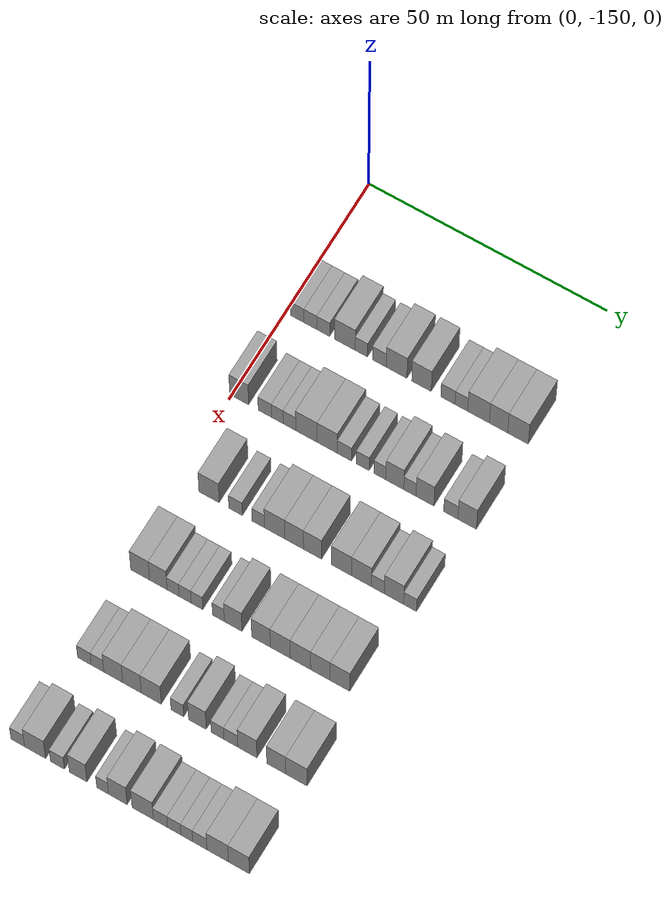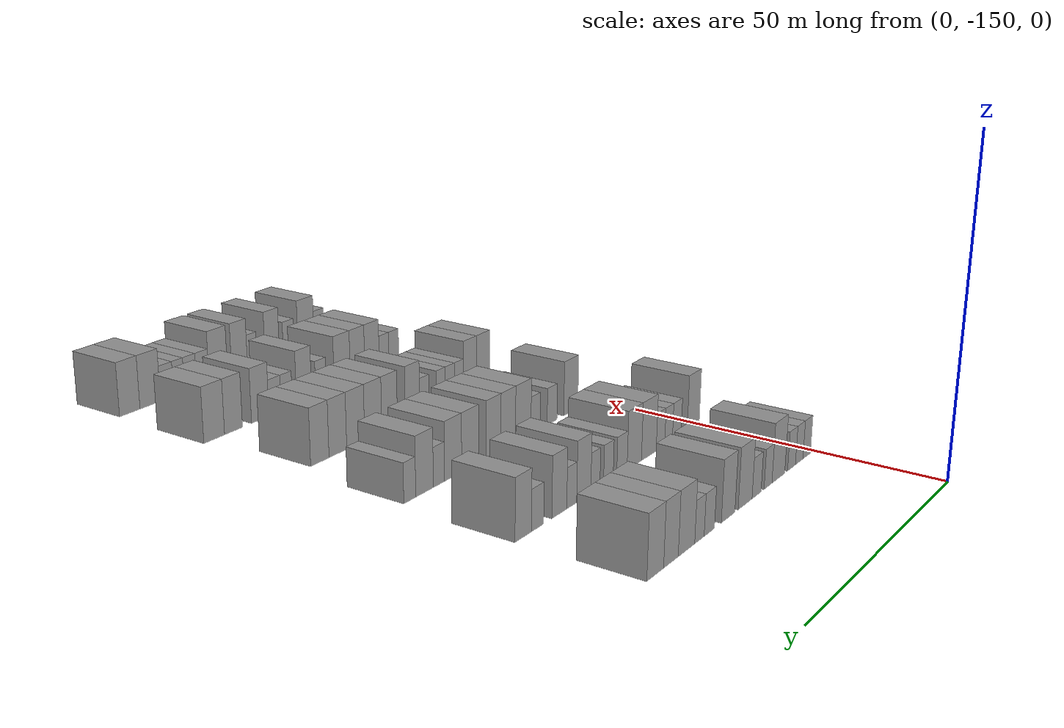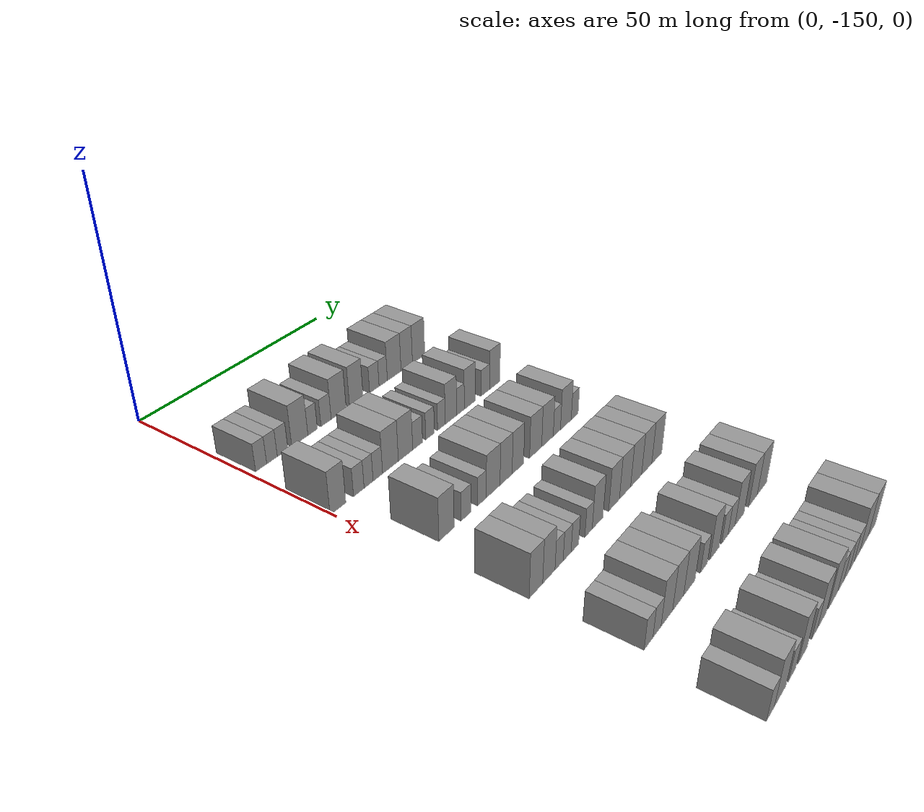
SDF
<sdf version="1.6">
 <world name="default">
  <model name="building_50">
   <static>1</static>
   <pose>25.0000 -147.4396 0 0.000000 0.000000 0.000000</pose>
   <link name="link">
    <pose>0 0 3.00 0 0 0</pose>
    <collision name="collision"><geometry><box><size>10.0000 2.7616 6.0000</size></box></geometry></collision>
    <visual name="visual">
     <cast_shadows>0</cast_shadows>
     <geometry><box><size>10.0000 2.7616 6.0000</size></box></geometry>
     <material>
      <script>
       <uri>model://grey_wall/materials/scripts</uri>
       <uri>model://grey_wall/materials/textures</uri>
       <name>vrc/grey_wall</name>
      </script>
     </material>
    </visual>
   </link>
  </model>
  <model name="building_51">
   <static>1</static>
   <pose>25.0000 -144.7101 0 0.000000 0.000000 0.000000</pose>
   <link name="link">
    <pose>0 0 3.00 0 0 0</pose>
    <collision name="collision"><geometry><box><size>10.0000 2.6974 6.0000</size></box></geometry></collision>
    <visual name="visual">
     <cast_shadows>0</cast_shadows>
     <geometry><box><size>10.0000 2.6974 6.0000</size></box></geometry>
     <material>
      <script>
       <uri>model://grey_wall/materials/scripts</uri>
       <uri>model://grey_wall/materials/textures</uri>
       <name>vrc/grey_wall</name>
      </script>
     </material>
    </visual>
   </link>
  </model>
  <model name="building_52">
   <static>1</static>
   <pose>25.0000 -141.9887 0 0.000000 0.000000 0.000000</pose>
   <link name="link">
    <pose>0 0 3.00 0 0 0</pose>
    <collision name="collision"><geometry><box><size>10.0000 2.7454 6.0000</size></box></geometry></collision>
    <visual name="visual">
     <cast_shadows>0</cast_shadows>
     <geometry><box><size>10.0000 2.7454 6.0000</size></box></geometry>
     <material>
      <script>
       <uri>model://grey_wall/materials/scripts</uri>
       <uri>model://grey_wall/materials/textures</uri>
       <name>vrc/grey_wall</name>
      </script>
     </material>
    </visual>
   </link>
  </model>
  <model name="building_53">
   <static>1</static>
   <pose>25.0000 -137.4434 0 0.000000 0.000000 0.000000</pose>
   <link name="link">
    <pose>0 0 4.50 0 0 0</pose>
    <collision name="collision"><geometry><box><size>10.0000 4.3451 9.0000</size></box></geometry></collision>
    <visual name="visual">
     <cast_shadows>0</cast_shadows>
     <geometry><box><size>10.0000 4.3451 9.0000</size></box></geometry>
     <material>
      <script>
       <uri>model://grey_wall/materials/scripts</uri>
       <uri>model://grey_wall/materials/textures</uri>
       <name>vrc/grey_wall</name>
      </script>
     </material>
    </visual>
   </link>
  </model>
  <model name="building_54">
   <static>1</static>
   <pose>25.0000 -133.9712 0 0.000000 0.000000 0.000000</pose>
   <link name="link">
    <pose>0 0 3.00 0 0 0</pose>
    <collision name="collision"><geometry><box><size>10.0000 2.5995 6.0000</size></box></geometry></collision>
    <visual name="visual">
     <cast_shadows>0</cast_shadows>
     <geometry><box><size>10.0000 2.5995 6.0000</size></box></geometry>
     <material>
      <script>
       <uri>model://grey_wall/materials/scripts</uri>
       <uri>model://grey_wall/materials/textures</uri>
       <name>vrc/grey_wall</name>
      </script>
     </material>
    </visual>
   </link>
  </model>
  <model name="building_55">
   <static>1</static>
   <pose>25.0000 -130.2247 0 0.000000 0.000000 0.000000</pose>
   <link name="link">
    <pose>0 0 3.00 0 0 0</pose>
    <collision name="collision"><geometry><box><size>10.0000 2.8934 6.0000</size></box></geometry></collision>
    <visual name="visual">
     <cast_shadows>0</cast_shadows>
     <geometry><box><size>10.0000 2.8934 6.0000</size></box></geometry>
     <material>
      <script>
       <uri>model://grey_wall/materials/scripts</uri>
       <uri>model://grey_wall/materials/textures</uri>
       <name>vrc/grey_wall</name>
      </script>
     </material>
    </visual>
   </link>
  </model>
  <model name="building_56">
   <static>1</static>
   <pose>25.0000 -126.6018 0 0.000000 0.000000 0.000000</pose>
   <link name="link">
    <pose>0 0 4.50 0 0 0</pose>
    <collision name="collision"><geometry><box><size>10.0000 4.3524 9.0000</size></box></geometry></collision>
    <visual name="visual">
     <cast_shadows>0</cast_shadows>
     <geometry><box><size>10.0000 4.3524 9.0000</size></box></geometry>
     <material>
      <script>
       <uri>model://grey_wall/materials/scripts</uri>
       <uri>model://grey_wall/materials/textures</uri>
       <name>vrc/grey_wall</name>
      </script>
     </material>
    </visual>
   </link>
  </model>
  <model name="building_57">
   <static>1</static>
   <pose>25.0000 -121.3888 0 0.000000 0.000000 0.000000</pose>
   <link name="link">
    <pose>0 0 4.50 0 0 0</pose>
    <collision name="collision"><geometry><box><size>10.0000 4.0735 9.0000</size></box></geometry></collision>
    <visual name="visual">
     <cast_shadows>0</cast_shadows>
     <geometry><box><size>10.0000 4.0735 9.0000</size></box></geometry>
     <material>
      <script>
       <uri>model://grey_wall/materials/scripts</uri>
       <uri>model://grey_wall/materials/textures</uri>
       <name>vrc/grey_wall</name>
      </script>
     </material>
    </visual>
   </link>
  </model>
  <model name="building_58">
   <static>1</static>
   <pose>25.0000 -115.8727 0 0.000000 0.000000 0.000000</pose>
   <link name="link">
    <pose>0 0 3.00 0 0 0</pose>
    <collision name="collision"><geometry><box><size>10.0000 2.9587 6.0000</size></box></geometry></collision>
    <visual name="visual">
     <cast_shadows>0</cast_shadows>
     <geometry><box><size>10.0000 2.9587 6.0000</size></box></geometry>
     <material>
      <script>
       <uri>model://grey_wall/materials/scripts</uri>
       <uri>model://grey_wall/materials/textures</uri>
       <name>vrc/grey_wall</name>
      </script>
     </material>
    </visual>
   </link>
  </model>
  <model name="building_59">
   <static>1</static>
   <pose>25.0000 -113.0709 0 0.000000 0.000000 0.000000</pose>
   <link name="link">
    <pose>0 0 3.00 0 0 0</pose>
    <collision name="collision"><geometry><box><size>10.0000 2.6449 6.0000</size></box></geometry></collision>
    <visual name="visual">
     <cast_shadows>0</cast_shadows>
     <geometry><box><size>10.0000 2.6449 6.0000</size></box></geometry>
     <material>
      <script>
       <uri>model://grey_wall/materials/scripts</uri>
       <uri>model://grey_wall/materials/textures</uri>
       <name>vrc/grey_wall</name>
      </script>
     </material>
    </visual>
   </link>
  </model>
  <model name="building_60">
   <static>1</static>
   <pose>25.0000 -109.5087 0 0.000000 0.000000 0.000000</pose>
   <link name="link">
    <pose>0 0 4.50 0 0 0</pose>
    <collision name="collision"><geometry><box><size>10.0000 4.4795 9.0000</size></box></geometry></collision>
    <visual name="visual">
     <cast_shadows>0</cast_shadows>
     <geometry><box><size>10.0000 4.4795 9.0000</size></box></geometry>
     <material>
      <script>
       <uri>model://grey_wall/materials/scripts</uri>
       <uri>model://grey_wall/materials/textures</uri>
       <name>vrc/grey_wall</name>
      </script>
     </material>
    </visual>
   </link>
  </model>
  <model name="building_61">
   <static>1</static>
   <pose>25.0000 -105.3540 0 0.000000 0.000000 0.000000</pose>
   <link name="link">
    <pose>0 0 4.50 0 0 0</pose>
    <collision name="collision"><geometry><box><size>10.0000 3.8300 9.0000</size></box></geometry></collision>
    <visual name="visual">
     <cast_shadows>0</cast_shadows>
     <geometry><box><size>10.0000 3.8300 9.0000</size></box></geometry>
     <material>
      <script>
       <uri>model://grey_wall/materials/scripts</uri>
       <uri>model://grey_wall/materials/textures</uri>
       <name>vrc/grey_wall</name>
      </script>
     </material>
    </visual>
   </link>
  </model>
  <model name="building_62">
   <static>1</static>
   <pose>25.0000 -101.3069 0 0.000000 0.000000 0.000000</pose>
   <link name="link">
    <pose>0 0 4.50 0 0 0</pose>
    <collision name="collision"><geometry><box><size>10.0000 4.2642 9.0000</size></box></geometry></collision>
    <visual name="visual">
     <cast_shadows>0</cast_shadows>
     <geometry><box><size>10.0000 4.2642 9.0000</size></box></geometry>
     <material>
      <script>
       <uri>model://grey_wall/materials/scripts</uri>
       <uri>model://grey_wall/materials/textures</uri>
       <name>vrc/grey_wall</name>
      </script>
     </material>
    </visual>
   </link>
  </model>
  <model name="building_216">
   <static>1</static>
   <pose>44.0000 -148.3406 0 0.000000 0.000000 0.000000</pose>
   <link name="link">
    <pose>0 0 4.50 0 0 0</pose>
    <collision name="collision"><geometry><box><size>10.0000 3.9997 9.0000</size></box></geometry></collision>
    <visual name="visual">
     <cast_shadows>0</cast_shadows>
     <geometry><box><size>10.0000 3.9997 9.0000</size></box></geometry>
     <material>
      <script>
       <uri>model://grey_wall/materials/scripts</uri>
       <uri>model://grey_wall/materials/textures</uri>
       <name>vrc/grey_wall</name>
      </script>
     </material>
    </visual>
   </link>
  </model>
  <model name="building_217">
   <static>1</static>
   <pose>44.0000 -142.9400 0 0.000000 0.000000 0.000000</pose>
   <link name="link">
    <pose>0 0 3.00 0 0 0</pose>
    <collision name="collision"><geometry><box><size>10.0000 2.8016 6.0000</size></box></geometry></collision>
    <visual name="visual">
     <cast_shadows>0</cast_shadows>
     <geometry><box><size>10.0000 2.8016 6.0000</size></box></geometry>
     <material>
      <script>
       <uri>model://grey_wall/materials/scripts</uri>
       <uri>model://grey_wall/materials/textures</uri>
       <name>vrc/grey_wall</name>
      </script>
     </material>
    </visual>
   </link>
  </model>
  <model name="building_218">
   <static>1</static>
   <pose>44.0000 -140.3200 0 0.000000 0.000000 0.000000</pose>
   <link name="link">
    <pose>0 0 3.00 0 0 0</pose>
    <collision name="collision"><geometry><box><size>10.0000 2.4385 6.0000</size></box></geometry></collision>
    <visual name="visual">
     <cast_shadows>0</cast_shadows>
     <geometry><box><size>10.0000 2.4385 6.0000</size></box></geometry>
     <material>
      <script>
       <uri>model://grey_wall/materials/scripts</uri>
       <uri>model://grey_wall/materials/textures</uri>
       <name>vrc/grey_wall</name>
      </script>
     </material>
    </visual>
   </link>
  </model>
  <model name="building_219">
   <static>1</static>
   <pose>44.0000 -137.7869 0 0.000000 0.000000 0.000000</pose>
   <link name="link">
    <pose>0 0 3.00 0 0 0</pose>
    <collision name="collision"><geometry><box><size>10.0000 2.6277 6.0000</size></box></geometry></collision>
    <visual name="visual">
     <cast_shadows>0</cast_shadows>
     <geometry><box><size>10.0000 2.6277 6.0000</size></box></geometry>
     <material>
      <script>
       <uri>model://grey_wall/materials/scripts</uri>
       <uri>model://grey_wall/materials/textures</uri>
       <name>vrc/grey_wall</name>
      </script>
     </material>
    </visual>
   </link>
  </model>
  <model name="building_220">
   <static>1</static>
   <pose>44.0000 -134.2328 0 0.000000 0.000000 0.000000</pose>
   <link name="link">
    <pose>0 0 4.50 0 0 0</pose>
    <collision name="collision"><geometry><box><size>10.0000 4.4805 9.0000</size></box></geometry></collision>
    <visual name="visual">
     <cast_shadows>0</cast_shadows>
     <geometry><box><size>10.0000 4.4805 9.0000</size></box></geometry>
     <material>
      <script>
       <uri>model://grey_wall/materials/scripts</uri>
       <uri>model://grey_wall/materials/textures</uri>
       <name>vrc/grey_wall</name>
      </script>
     </material>
    </visual>
   </link>
  </model>
  <model name="building_221">
   <static>1</static>
   <pose>44.0000 -129.8819 0 0.000000 0.000000 0.000000</pose>
   <link name="link">
    <pose>0 0 4.50 0 0 0</pose>
    <collision name="collision"><geometry><box><size>10.0000 4.2213 9.0000</size></box></geometry></collision>
    <visual name="visual">
     <cast_shadows>0</cast_shadows>
     <geometry><box><size>10.0000 4.2213 9.0000</size></box></geometry>
     <material>
      <script>
       <uri>model://grey_wall/materials/scripts</uri>
       <uri>model://grey_wall/materials/textures</uri>
       <name>vrc/grey_wall</name>
      </script>
     </material>
    </visual>
   </link>
  </model>
  <model name="building_222">
   <static>1</static>
   <pose>44.0000 -126.2952 0 0.000000 0.000000 0.000000</pose>
   <link name="link">
    <pose>0 0 3.00 0 0 0</pose>
    <collision name="collision"><geometry><box><size>10.0000 2.9522 6.0000</size></box></geometry></collision>
    <visual name="visual">
     <cast_shadows>0</cast_shadows>
     <geometry><box><size>10.0000 2.9522 6.0000</size></box></geometry>
     <material>
      <script>
       <uri>model://grey_wall/materials/scripts</uri>
       <uri>model://grey_wall/materials/textures</uri>
       <name>vrc/grey_wall</name>
      </script>
     </material>
    </visual>
   </link>
  </model>
  <model name="building_223">
   <static>1</static>
   <pose>44.0000 -122.4851 0 0.000000 0.000000 0.000000</pose>
   <link name="link">
    <pose>0 0 3.00 0 0 0</pose>
    <collision name="collision"><geometry><box><size>10.0000 2.6678 6.0000</size></box></geometry></collision>
    <visual name="visual">
     <cast_shadows>0</cast_shadows>
     <geometry><box><size>10.0000 2.6678 6.0000</size></box></geometry>
     <material>
      <script>
       <uri>model://grey_wall/materials/scripts</uri>
       <uri>model://grey_wall/materials/textures</uri>
       <name>vrc/grey_wall</name>
      </script>
     </material>
    </visual>
   </link>
  </model>
  <model name="building_224">
   <static>1</static>
   <pose>44.0000 -118.9245 0 0.000000 0.000000 0.000000</pose>
   <link name="link">
    <pose>0 0 3.00 0 0 0</pose>
    <collision name="collision"><geometry><box><size>10.0000 2.4534 6.0000</size></box></geometry></collision>
    <visual name="visual">
     <cast_shadows>0</cast_shadows>
     <geometry><box><size>10.0000 2.4534 6.0000</size></box></geometry>
     <material>
      <script>
       <uri>model://grey_wall/materials/scripts</uri>
       <uri>model://grey_wall/materials/textures</uri>
       <name>vrc/grey_wall</name>
      </script>
     </material>
    </visual>
   </link>
  </model>
  <model name="building_225">
   <static>1</static>
   <pose>44.0000 -115.8391 0 0.000000 0.000000 0.000000</pose>
   <link name="link">
    <pose>0 0 4.50 0 0 0</pose>
    <collision name="collision"><geometry><box><size>10.0000 3.7175 9.0000</size></box></geometry></collision>
    <visual name="visual">
     <cast_shadows>0</cast_shadows>
     <geometry><box><size>10.0000 3.7175 9.0000</size></box></geometry>
     <material>
      <script>
       <uri>model://grey_wall/materials/scripts</uri>
       <uri>model://grey_wall/materials/textures</uri>
       <name>vrc/grey_wall</name>
      </script>
     </material>
    </visual>
   </link>
  </model>
  <model name="building_226">
   <static>1</static>
   <pose>44.0000 -112.7089 0 0.000000 0.000000 0.000000</pose>
   <link name="link">
    <pose>0 0 3.00 0 0 0</pose>
    <collision name="collision"><geometry><box><size>10.0000 2.5429 6.0000</size></box></geometry></collision>
    <visual name="visual">
     <cast_shadows>0</cast_shadows>
     <geometry><box><size>10.0000 2.5429 6.0000</size></box></geometry>
     <material>
      <script>
       <uri>model://grey_wall/materials/scripts</uri>
       <uri>model://grey_wall/materials/textures</uri>
       <name>vrc/grey_wall</name>
      </script>
     </material>
    </visual>
   </link>
  </model>
  <model name="building_227">
   <static>1</static>
   <pose>44.0000 -109.5735 0 0.000000 0.000000 0.000000</pose>
   <link name="link">
    <pose>0 0 4.50 0 0 0</pose>
    <collision name="collision"><geometry><box><size>10.0000 3.7279 9.0000</size></box></geometry></collision>
    <visual name="visual">
     <cast_shadows>0</cast_shadows>
     <geometry><box><size>10.0000 3.7279 9.0000</size></box></geometry>
     <material>
      <script>
       <uri>model://grey_wall/materials/scripts</uri>
       <uri>model://grey_wall/materials/textures</uri>
       <name>vrc/grey_wall</name>
      </script>
     </material>
    </visual>
   </link>
  </model>
  <model name="building_228">
   <static>1</static>
   <pose>44.0000 -104.2325 0 0.000000 0.000000 0.000000</pose>
   <link name="link">
    <pose>0 0 3.00 0 0 0</pose>
    <collision name="collision"><geometry><box><size>10.0000 2.9539 6.0000</size></box></geometry></collision>
    <visual name="visual">
     <cast_shadows>0</cast_shadows>
     <geometry><box><size>10.0000 2.9539 6.0000</size></box></geometry>
     <material>
      <script>
       <uri>model://grey_wall/materials/scripts</uri>
       <uri>model://grey_wall/materials/textures</uri>
       <name>vrc/grey_wall</name>
      </script>
     </material>
    </visual>
   </link>
  </model>
  <model name="building_229">
   <static>1</static>
   <pose>44.0000 -100.8487 0 0.000000 0.000000 0.000000</pose>
   <link name="link">
    <pose>0 0 4.50 0 0 0</pose>
    <collision name="collision"><geometry><box><size>10.0000 3.8137 9.0000</size></box></geometry></collision>
    <visual name="visual">
     <cast_shadows>0</cast_shadows>
     <geometry><box><size>10.0000 3.8137 9.0000</size></box></geometry>
     <material>
      <script>
       <uri>model://grey_wall/materials/scripts</uri>
       <uri>model://grey_wall/materials/textures</uri>
       <name>vrc/grey_wall</name>
      </script>
     </material>
    </visual>
   </link>
  </model>
  <model name="building_396">
   <static>1</static>
   <pose>63.0000 -143.1976 0 0.000000 0.000000 0.000000</pose>
   <link name="link">
    <pose>0 0 4.50 0 0 0</pose>
    <collision name="collision"><geometry><box><size>10.0000 4.2313 9.0000</size></box></geometry></collision>
    <visual name="visual">
     <cast_shadows>0</cast_shadows>
     <geometry><box><size>10.0000 4.2313 9.0000</size></box></geometry>
     <material>
      <script>
       <uri>model://grey_wall/materials/scripts</uri>
       <uri>model://grey_wall/materials/textures</uri>
       <name>vrc/grey_wall</name>
      </script>
     </material>
    </visual>
   </link>
  </model>
  <model name="building_397">
   <static>1</static>
   <pose>63.0000 -137.6593 0 0.000000 0.000000 0.000000</pose>
   <link name="link">
    <pose>0 0 3.00 0 0 0</pose>
    <collision name="collision"><geometry><box><size>10.0000 2.8453 6.0000</size></box></geometry></collision>
    <visual name="visual">
     <cast_shadows>0</cast_shadows>
     <geometry><box><size>10.0000 2.8453 6.0000</size></box></geometry>
     <material>
      <script>
       <uri>model://grey_wall/materials/scripts</uri>
       <uri>model://grey_wall/materials/textures</uri>
       <name>vrc/grey_wall</name>
      </script>
     </material>
    </visual>
   </link>
  </model>
  <model name="building_398">
   <static>1</static>
   <pose>63.0000 -132.9473 0 0.000000 0.000000 0.000000</pose>
   <link name="link">
    <pose>0 0 3.00 0 0 0</pose>
    <collision name="collision"><geometry><box><size>10.0000 2.5787 6.0000</size></box></geometry></collision>
    <visual name="visual">
     <cast_shadows>0</cast_shadows>
     <geometry><box><size>10.0000 2.5787 6.0000</size></box></geometry>
     <material>
      <script>
       <uri>model://grey_wall/materials/scripts</uri>
       <uri>model://grey_wall/materials/textures</uri>
       <name>vrc/grey_wall</name>
      </script>
     </material>
    </visual>
   </link>
  </model>
  <model name="building_399">
   <static>1</static>
   <pose>63.0000 -129.5446 0 0.000000 0.000000 0.000000</pose>
   <link name="link">
    <pose>0 0 4.50 0 0 0</pose>
    <collision name="collision"><geometry><box><size>10.0000 4.2268 9.0000</size></box></geometry></collision>
    <visual name="visual">
     <cast_shadows>0</cast_shadows>
     <geometry><box><size>10.0000 4.2268 9.0000</size></box></geometry>
     <material>
      <script>
       <uri>model://grey_wall/materials/scripts</uri>
       <uri>model://grey_wall/materials/textures</uri>
       <name>vrc/grey_wall</name>
      </script>
     </material>
    </visual>
   </link>
  </model>
  <model name="building_400">
   <static>1</static>
   <pose>63.0000 -125.4927 0 0.000000 0.000000 0.000000</pose>
   <link name="link">
    <pose>0 0 4.50 0 0 0</pose>
    <collision name="collision"><geometry><box><size>10.0000 3.8770 9.0000</size></box></geometry></collision>
    <visual name="visual">
     <cast_shadows>0</cast_shadows>
     <geometry><box><size>10.0000 3.8770 9.0000</size></box></geometry>
     <material>
      <script>
       <uri>model://grey_wall/materials/scripts</uri>
       <uri>model://grey_wall/materials/textures</uri>
       <name>vrc/grey_wall</name>
      </script>
     </material>
    </visual>
   </link>
  </model>
  <model name="building_401">
   <static>1</static>
   <pose>63.0000 -121.6686 0 0.000000 0.000000 0.000000</pose>
   <link name="link">
    <pose>0 0 4.50 0 0 0</pose>
    <collision name="collision"><geometry><box><size>10.0000 3.7712 9.0000</size></box></geometry></collision>
    <visual name="visual">
     <cast_shadows>0</cast_shadows>
     <geometry><box><size>10.0000 3.7712 9.0000</size></box></geometry>
     <material>
      <script>
       <uri>model://grey_wall/materials/scripts</uri>
       <uri>model://grey_wall/materials/textures</uri>
       <name>vrc/grey_wall</name>
      </script>
     </material>
    </visual>
   </link>
  </model>
  <model name="building_402">
   <static>1</static>
   <pose>63.0000 -115.6997 0 0.000000 0.000000 0.000000</pose>
   <link name="link">
    <pose>0 0 4.50 0 0 0</pose>
    <collision name="collision"><geometry><box><size>10.0000 4.1666 9.0000</size></box></geometry></collision>
    <visual name="visual">
     <cast_shadows>0</cast_shadows>
     <geometry><box><size>10.0000 4.1666 9.0000</size></box></geometry>
     <material>
      <script>
       <uri>model://grey_wall/materials/scripts</uri>
       <uri>model://grey_wall/materials/textures</uri>
       <name>vrc/grey_wall</name>
      </script>
     </material>
    </visual>
   </link>
  </model>
  <model name="building_403">
   <static>1</static>
   <pose>63.0000 -111.5538 0 0.000000 0.000000 0.000000</pose>
   <link name="link">
    <pose>0 0 4.50 0 0 0</pose>
    <collision name="collision"><geometry><box><size>10.0000 4.1251 9.0000</size></box></geometry></collision>
    <visual name="visual">
     <cast_shadows>0</cast_shadows>
     <geometry><box><size>10.0000 4.1251 9.0000</size></box></geometry>
     <material>
      <script>
       <uri>model://grey_wall/materials/scripts</uri>
       <uri>model://grey_wall/materials/textures</uri>
       <name>vrc/grey_wall</name>
      </script>
     </material>
    </visual>
   </link>
  </model>
  <model name="building_404">
   <static>1</static>
   <pose>63.0000 -108.1817 0 0.000000 0.000000 0.000000</pose>
   <link name="link">
    <pose>0 0 3.00 0 0 0</pose>
    <collision name="collision"><geometry><box><size>10.0000 2.6191 6.0000</size></box></geometry></collision>
    <visual name="visual">
     <cast_shadows>0</cast_shadows>
     <geometry><box><size>10.0000 2.6191 6.0000</size></box></geometry>
     <material>
      <script>
       <uri>model://grey_wall/materials/scripts</uri>
       <uri>model://grey_wall/materials/textures</uri>
       <name>vrc/grey_wall</name>
      </script>
     </material>
    </visual>
   </link>
  </model>
  <model name="building_405">
   <static>1</static>
   <pose>63.0000 -104.8645 0 0.000000 0.000000 0.000000</pose>
   <link name="link">
    <pose>0 0 4.50 0 0 0</pose>
    <collision name="collision"><geometry><box><size>10.0000 4.0153 9.0000</size></box></geometry></collision>
    <visual name="visual">
     <cast_shadows>0</cast_shadows>
     <geometry><box><size>10.0000 4.0153 9.0000</size></box></geometry>
     <material>
      <script>
       <uri>model://grey_wall/materials/scripts</uri>
       <uri>model://grey_wall/materials/textures</uri>
       <name>vrc/grey_wall</name>
      </script>
     </material>
    </visual>
   </link>
  </model>
  <model name="building_406">
   <static>1</static>
   <pose>63.0000 -101.5328 0 0.000000 0.000000 0.000000</pose>
   <link name="link">
    <pose>0 0 3.00 0 0 0</pose>
    <collision name="collision"><geometry><box><size>10.0000 2.6483 6.0000</size></box></geometry></collision>
    <visual name="visual">
     <cast_shadows>0</cast_shadows>
     <geometry><box><size>10.0000 2.6483 6.0000</size></box></geometry>
     <material>
      <script>
       <uri>model://grey_wall/materials/scripts</uri>
       <uri>model://grey_wall/materials/textures</uri>
       <name>vrc/grey_wall</name>
      </script>
     </material>
    </visual>
   </link>
  </model>
  <model name="building_574">
   <static>1</static>
   <pose>82.0000 -146.0619 0 0.000000 0.000000 0.000000</pose>
   <link name="link">
    <pose>0 0 4.50 0 0 0</pose>
    <collision name="collision"><geometry><box><size>10.0000 3.8929 9.0000</size></box></geometry></collision>
    <visual name="visual">
     <cast_shadows>0</cast_shadows>
     <geometry><box><size>10.0000 3.8929 9.0000</size></box></geometry>
     <material>
      <script>
       <uri>model://grey_wall/materials/scripts</uri>
       <uri>model://grey_wall/materials/textures</uri>
       <name>vrc/grey_wall</name>
      </script>
     </material>
    </visual>
   </link>
  </model>
  <model name="building_575">
   <static>1</static>
   <pose>82.0000 -142.2809 0 0.000000 0.000000 0.000000</pose>
   <link name="link">
    <pose>0 0 4.50 0 0 0</pose>
    <collision name="collision"><geometry><box><size>10.0000 3.6691 9.0000</size></box></geometry></collision>
    <visual name="visual">
     <cast_shadows>0</cast_shadows>
     <geometry><box><size>10.0000 3.6691 9.0000</size></box></geometry>
     <material>
      <script>
       <uri>model://grey_wall/materials/scripts</uri>
       <uri>model://grey_wall/materials/textures</uri>
       <name>vrc/grey_wall</name>
      </script>
     </material>
    </visual>
   </link>
  </model>
  <model name="building_576">
   <static>1</static>
   <pose>82.0000 -139.1915 0 0.000000 0.000000 0.000000</pose>
   <link name="link">
    <pose>0 0 3.00 0 0 0</pose>
    <collision name="collision"><geometry><box><size>10.0000 2.5096 6.0000</size></box></geometry></collision>
    <visual name="visual">
     <cast_shadows>0</cast_shadows>
     <geometry><box><size>10.0000 2.5096 6.0000</size></box></geometry>
     <material>
      <script>
       <uri>model://grey_wall/materials/scripts</uri>
       <uri>model://grey_wall/materials/textures</uri>
       <name>vrc/grey_wall</name>
      </script>
     </material>
    </visual>
   </link>
  </model>
  <model name="building_577">
   <static>1</static>
   <pose>82.0000 -136.7003 0 0.000000 0.000000 0.000000</pose>
   <link name="link">
    <pose>0 0 3.00 0 0 0</pose>
    <collision name="collision"><geometry><box><size>10.0000 2.4730 6.0000</size></box></geometry></collision>
    <visual name="visual">
     <cast_shadows>0</cast_shadows>
     <geometry><box><size>10.0000 2.4730 6.0000</size></box></geometry>
     <material>
      <script>
       <uri>model://grey_wall/materials/scripts</uri>
       <uri>model://grey_wall/materials/textures</uri>
       <name>vrc/grey_wall</name>
      </script>
     </material>
    </visual>
   </link>
  </model>
  <model name="building_578">
   <static>1</static>
   <pose>82.0000 -134.2426 0 0.000000 0.000000 0.000000</pose>
   <link name="link">
    <pose>0 0 3.00 0 0 0</pose>
    <collision name="collision"><geometry><box><size>10.0000 2.4424 6.0000</size></box></geometry></collision>
    <visual name="visual">
     <cast_shadows>0</cast_shadows>
     <geometry><box><size>10.0000 2.4424 6.0000</size></box></geometry>
     <material>
      <script>
       <uri>model://grey_wall/materials/scripts</uri>
       <uri>model://grey_wall/materials/textures</uri>
       <name>vrc/grey_wall</name>
      </script>
     </material>
    </visual>
   </link>
  </model>
  <model name="building_579">
   <static>1</static>
   <pose>82.0000 -129.8025 0 0.000000 0.000000 0.000000</pose>
   <link name="link">
    <pose>0 0 3.00 0 0 0</pose>
    <collision name="collision"><geometry><box><size>10.0000 2.4378 6.0000</size></box></geometry></collision>
    <visual name="visual">
     <cast_shadows>0</cast_shadows>
     <geometry><box><size>10.0000 2.4378 6.0000</size></box></geometry>
     <material>
      <script>
       <uri>model://grey_wall/materials/scripts</uri>
       <uri>model://grey_wall/materials/textures</uri>
       <name>vrc/grey_wall</name>
      </script>
     </material>
    </visual>
   </link>
  </model>
  <model name="building_580">
   <static>1</static>
   <pose>82.0000 -126.7513 0 0.000000 0.000000 0.000000</pose>
   <link name="link">
    <pose>0 0 4.50 0 0 0</pose>
    <collision name="collision"><geometry><box><size>10.0000 3.6645 9.0000</size></box></geometry></collision>
    <visual name="visual">
     <cast_shadows>0</cast_shadows>
     <geometry><box><size>10.0000 3.6645 9.0000</size></box></geometry>
     <material>
      <script>
       <uri>model://grey_wall/materials/scripts</uri>
       <uri>model://grey_wall/materials/textures</uri>
       <name>vrc/grey_wall</name>
      </script>
     </material>
    </visual>
   </link>
  </model>
  <model name="building_581">
   <static>1</static>
   <pose>82.0000 -121.0029 0 0.000000 0.000000 0.000000</pose>
   <link name="link">
    <pose>0 0 4.50 0 0 0</pose>
    <collision name="collision"><geometry><box><size>10.0000 3.8324 9.0000</size></box></geometry></collision>
    <visual name="visual">
     <cast_shadows>0</cast_shadows>
     <geometry><box><size>10.0000 3.8324 9.0000</size></box></geometry>
     <material>
      <script>
       <uri>model://grey_wall/materials/scripts</uri>
       <uri>model://grey_wall/materials/textures</uri>
       <name>vrc/grey_wall</name>
      </script>
     </material>
    </visual>
   </link>
  </model>
  <model name="building_582">
   <static>1</static>
   <pose>82.0000 -117.0257 0 0.000000 0.000000 0.000000</pose>
   <link name="link">
    <pose>0 0 4.50 0 0 0</pose>
    <collision name="collision"><geometry><box><size>10.0000 4.1220 9.0000</size></box></geometry></collision>
    <visual name="visual">
     <cast_shadows>0</cast_shadows>
     <geometry><box><size>10.0000 4.1220 9.0000</size></box></geometry>
     <material>
      <script>
       <uri>model://grey_wall/materials/scripts</uri>
       <uri>model://grey_wall/materials/textures</uri>
       <name>vrc/grey_wall</name>
      </script>
     </material>
    </visual>
   </link>
  </model>
  <model name="building_583">
   <static>1</static>
   <pose>82.0000 -112.8716 0 0.000000 0.000000 0.000000</pose>
   <link name="link">
    <pose>0 0 4.50 0 0 0</pose>
    <collision name="collision"><geometry><box><size>10.0000 4.1861 9.0000</size></box></geometry></collision>
    <visual name="visual">
     <cast_shadows>0</cast_shadows>
     <geometry><box><size>10.0000 4.1861 9.0000</size></box></geometry>
     <material>
      <script>
       <uri>model://grey_wall/materials/scripts</uri>
       <uri>model://grey_wall/materials/textures</uri>
       <name>vrc/grey_wall</name>
      </script>
     </material>
    </visual>
   </link>
  </model>
  <model name="building_584">
   <static>1</static>
   <pose>82.0000 -108.7779 0 0.000000 0.000000 0.000000</pose>
   <link name="link">
    <pose>0 0 4.50 0 0 0</pose>
    <collision name="collision"><geometry><box><size>10.0000 4.0014 9.0000</size></box></geometry></collision>
    <visual name="visual">
     <cast_shadows>0</cast_shadows>
     <geometry><box><size>10.0000 4.0014 9.0000</size></box></geometry>
     <material>
      <script>
       <uri>model://grey_wall/materials/scripts</uri>
       <uri>model://grey_wall/materials/textures</uri>
       <name>vrc/grey_wall</name>
      </script>
     </material>
    </visual>
   </link>
  </model>
  <model name="building_585">
   <static>1</static>
   <pose>82.0000 -104.7562 0 0.000000 0.000000 0.000000</pose>
   <link name="link">
    <pose>0 0 4.50 0 0 0</pose>
    <collision name="collision"><geometry><box><size>10.0000 4.0419 9.0000</size></box></geometry></collision>
    <visual name="visual">
     <cast_shadows>0</cast_shadows>
     <geometry><box><size>10.0000 4.0419 9.0000</size></box></geometry>
     <material>
      <script>
       <uri>model://grey_wall/materials/scripts</uri>
       <uri>model://grey_wall/materials/textures</uri>
       <name>vrc/grey_wall</name>
      </script>
     </material>
    </visual>
   </link>
  </model>
  <model name="building_745">
   <static>1</static>
   <pose>101.0000 -146.0150 0 0.000000 0.000000 0.000000</pose>
   <link name="link">
    <pose>0 0 3.00 0 0 0</pose>
    <collision name="collision"><geometry><box><size>10.0000 2.7872 6.0000</size></box></geometry></collision>
    <visual name="visual">
     <cast_shadows>0</cast_shadows>
     <geometry><box><size>10.0000 2.7872 6.0000</size></box></geometry>
     <material>
      <script>
       <uri>model://grey_wall/materials/scripts</uri>
       <uri>model://grey_wall/materials/textures</uri>
       <name>vrc/grey_wall</name>
      </script>
     </material>
    </visual>
   </link>
  </model>
  <model name="building_746">
   <static>1</static>
   <pose>101.0000 -143.2998 0 0.000000 0.000000 0.000000</pose>
   <link name="link">
    <pose>0 0 3.00 0 0 0</pose>
    <collision name="collision"><geometry><box><size>10.0000 2.6431 6.0000</size></box></geometry></collision>
    <visual name="visual">
     <cast_shadows>0</cast_shadows>
     <geometry><box><size>10.0000 2.6431 6.0000</size></box></geometry>
     <material>
      <script>
       <uri>model://grey_wall/materials/scripts</uri>
       <uri>model://grey_wall/materials/textures</uri>
       <name>vrc/grey_wall</name>
      </script>
     </material>
    </visual>
   </link>
  </model>
  <model name="building_747">
   <static>1</static>
   <pose>101.0000 -140.0301 0 0.000000 0.000000 0.000000</pose>
   <link name="link">
    <pose>0 0 4.50 0 0 0</pose>
    <collision name="collision"><geometry><box><size>10.0000 3.8963 9.0000</size></box></geometry></collision>
    <visual name="visual">
     <cast_shadows>0</cast_shadows>
     <geometry><box><size>10.0000 3.8963 9.0000</size></box></geometry>
     <material>
      <script>
       <uri>model://grey_wall/materials/scripts</uri>
       <uri>model://grey_wall/materials/textures</uri>
       <name>vrc/grey_wall</name>
      </script>
     </material>
    </visual>
   </link>
  </model>
  <model name="building_748">
   <static>1</static>
   <pose>101.0000 -136.1657 0 0.000000 0.000000 0.000000</pose>
   <link name="link">
    <pose>0 0 4.50 0 0 0</pose>
    <collision name="collision"><geometry><box><size>10.0000 3.8326 9.0000</size></box></geometry></collision>
    <visual name="visual">
     <cast_shadows>0</cast_shadows>
     <geometry><box><size>10.0000 3.8326 9.0000</size></box></geometry>
     <material>
      <script>
       <uri>model://grey_wall/materials/scripts</uri>
       <uri>model://grey_wall/materials/textures</uri>
       <name>vrc/grey_wall</name>
      </script>
     </material>
    </visual>
   </link>
  </model>
  <model name="building_749">
   <static>1</static>
   <pose>101.0000 -132.1764 0 0.000000 0.000000 0.000000</pose>
   <link name="link">
    <pose>0 0 4.50 0 0 0</pose>
    <collision name="collision"><geometry><box><size>10.0000 4.1459 9.0000</size></box></geometry></collision>
    <visual name="visual">
     <cast_shadows>0</cast_shadows>
     <geometry><box><size>10.0000 4.1459 9.0000</size></box></geometry>
     <material>
      <script>
       <uri>model://grey_wall/materials/scripts</uri>
       <uri>model://grey_wall/materials/textures</uri>
       <name>vrc/grey_wall</name>
      </script>
     </material>
    </visual>
   </link>
  </model>
  <model name="building_750">
   <static>1</static>
   <pose>101.0000 -126.7906 0 0.000000 0.000000 0.000000</pose>
   <link name="link">
    <pose>0 0 3.00 0 0 0</pose>
    <collision name="collision"><geometry><box><size>10.0000 2.6259 6.0000</size></box></geometry></collision>
    <visual name="visual">
     <cast_shadows>0</cast_shadows>
     <geometry><box><size>10.0000 2.6259 6.0000</size></box></geometry>
     <material>
      <script>
       <uri>model://grey_wall/materials/scripts</uri>
       <uri>model://grey_wall/materials/textures</uri>
       <name>vrc/grey_wall</name>
      </script>
     </material>
    </visual>
   </link>
  </model>
  <model name="building_751">
   <static>1</static>
   <pose>101.0000 -122.6589 0 0.000000 0.000000 0.000000</pose>
   <link name="link">
    <pose>0 0 4.50 0 0 0</pose>
    <collision name="collision"><geometry><box><size>10.0000 3.6375 9.0000</size></box></geometry></collision>
    <visual name="visual">
     <cast_shadows>0</cast_shadows>
     <geometry><box><size>10.0000 3.6375 9.0000</size></box></geometry>
     <material>
      <script>
       <uri>model://grey_wall/materials/scripts</uri>
       <uri>model://grey_wall/materials/textures</uri>
       <name>vrc/grey_wall</name>
      </script>
     </material>
    </visual>
   </link>
  </model>
  <model name="building_752">
   <static>1</static>
   <pose>101.0000 -118.5354 0 0.000000 0.000000 0.000000</pose>
   <link name="link">
    <pose>0 0 3.00 0 0 0</pose>
    <collision name="collision"><geometry><box><size>10.0000 2.6094 6.0000</size></box></geometry></collision>
    <visual name="visual">
     <cast_shadows>0</cast_shadows>
     <geometry><box><size>10.0000 2.6094 6.0000</size></box></geometry>
     <material>
      <script>
       <uri>model://grey_wall/materials/scripts</uri>
       <uri>model://grey_wall/materials/textures</uri>
       <name>vrc/grey_wall</name>
      </script>
     </material>
    </visual>
   </link>
  </model>
  <model name="building_753">
   <static>1</static>
   <pose>101.0000 -115.8060 0 0.000000 0.000000 0.000000</pose>
   <link name="link">
    <pose>0 0 3.00 0 0 0</pose>
    <collision name="collision"><geometry><box><size>10.0000 2.8496 6.0000</size></box></geometry></collision>
    <visual name="visual">
     <cast_shadows>0</cast_shadows>
     <geometry><box><size>10.0000 2.8496 6.0000</size></box></geometry>
     <material>
      <script>
       <uri>model://grey_wall/materials/scripts</uri>
       <uri>model://grey_wall/materials/textures</uri>
       <name>vrc/grey_wall</name>
      </script>
     </material>
    </visual>
   </link>
  </model>
  <model name="building_754">
   <static>1</static>
   <pose>101.0000 -112.4113 0 0.000000 0.000000 0.000000</pose>
   <link name="link">
    <pose>0 0 4.50 0 0 0</pose>
    <collision name="collision"><geometry><box><size>10.0000 3.9398 9.0000</size></box></geometry></collision>
    <visual name="visual">
     <cast_shadows>0</cast_shadows>
     <geometry><box><size>10.0000 3.9398 9.0000</size></box></geometry>
     <material>
      <script>
       <uri>model://grey_wall/materials/scripts</uri>
       <uri>model://grey_wall/materials/textures</uri>
       <name>vrc/grey_wall</name>
      </script>
     </material>
    </visual>
   </link>
  </model>
  <model name="building_755">
   <static>1</static>
   <pose>101.0000 -106.5028 0 0.000000 0.000000 0.000000</pose>
   <link name="link">
    <pose>0 0 4.50 0 0 0</pose>
    <collision name="collision"><geometry><box><size>10.0000 3.8773 9.0000</size></box></geometry></collision>
    <visual name="visual">
     <cast_shadows>0</cast_shadows>
     <geometry><box><size>10.0000 3.8773 9.0000</size></box></geometry>
     <material>
      <script>
       <uri>model://grey_wall/materials/scripts</uri>
       <uri>model://grey_wall/materials/textures</uri>
       <name>vrc/grey_wall</name>
      </script>
     </material>
    </visual>
   </link>
  </model>
  <model name="building_756">
   <static>1</static>
   <pose>101.0000 -102.3799 0 0.000000 0.000000 0.000000</pose>
   <link name="link">
    <pose>0 0 4.50 0 0 0</pose>
    <collision name="collision"><geometry><box><size>10.0000 4.3685 9.0000</size></box></geometry></collision>
    <visual name="visual">
     <cast_shadows>0</cast_shadows>
     <geometry><box><size>10.0000 4.3685 9.0000</size></box></geometry>
     <material>
      <script>
       <uri>model://grey_wall/materials/scripts</uri>
       <uri>model://grey_wall/materials/textures</uri>
       <name>vrc/grey_wall</name>
      </script>
     </material>
    </visual>
   </link>
  </model>
  <model name="building_922">
   <static>1</static>
   <pose>120.0000 -148.0499 0 0.000000 0.000000 0.000000</pose>
   <link name="link">
    <pose>0 0 3.00 0 0 0</pose>
    <collision name="collision"><geometry><box><size>10.0000 2.8084 6.0000</size></box></geometry></collision>
    <visual name="visual">
     <cast_shadows>0</cast_shadows>
     <geometry><box><size>10.0000 2.8084 6.0000</size></box></geometry>
     <material>
      <script>
       <uri>model://grey_wall/materials/scripts</uri>
       <uri>model://grey_wall/materials/textures</uri>
       <name>vrc/grey_wall</name>
      </script>
     </material>
    </visual>
   </link>
  </model>
  <model name="building_923">
   <static>1</static>
   <pose>120.0000 -144.4741 0 0.000000 0.000000 0.000000</pose>
   <link name="link">
    <pose>0 0 4.50 0 0 0</pose>
    <collision name="collision"><geometry><box><size>10.0000 4.3432 9.0000</size></box></geometry></collision>
    <visual name="visual">
     <cast_shadows>0</cast_shadows>
     <geometry><box><size>10.0000 4.3432 9.0000</size></box></geometry>
     <material>
      <script>
       <uri>model://grey_wall/materials/scripts</uri>
       <uri>model://grey_wall/materials/textures</uri>
       <name>vrc/grey_wall</name>
      </script>
     </material>
    </visual>
   </link>
  </model>
  <model name="building_924">
   <static>1</static>
   <pose>120.0000 -139.8643 0 0.000000 0.000000 0.000000</pose>
   <link name="link">
    <pose>0 0 3.00 0 0 0</pose>
    <collision name="collision"><geometry><box><size>10.0000 2.8765 6.0000</size></box></geometry></collision>
    <visual name="visual">
     <cast_shadows>0</cast_shadows>
     <geometry><box><size>10.0000 2.8765 6.0000</size></box></geometry>
     <material>
      <script>
       <uri>model://grey_wall/materials/scripts</uri>
       <uri>model://grey_wall/materials/textures</uri>
       <name>vrc/grey_wall</name>
      </script>
     </material>
    </visual>
   </link>
  </model>
  <model name="building_925">
   <static>1</static>
   <pose>120.0000 -135.6022 0 0.000000 0.000000 0.000000</pose>
   <link name="link">
    <pose>0 0 4.50 0 0 0</pose>
    <collision name="collision"><geometry><box><size>10.0000 3.6476 9.0000</size></box></geometry></collision>
    <visual name="visual">
     <cast_shadows>0</cast_shadows>
     <geometry><box><size>10.0000 3.6476 9.0000</size></box></geometry>
     <material>
      <script>
       <uri>model://grey_wall/materials/scripts</uri>
       <uri>model://grey_wall/materials/textures</uri>
       <name>vrc/grey_wall</name>
      </script>
     </material>
    </visual>
   </link>
  </model>
  <model name="building_926">
   <static>1</static>
   <pose>120.0000 -130.5686 0 0.000000 0.000000 0.000000</pose>
   <link name="link">
    <pose>0 0 3.00 0 0 0</pose>
    <collision name="collision"><geometry><box><size>10.0000 2.4195 6.0000</size></box></geometry></collision>
    <visual name="visual">
     <cast_shadows>0</cast_shadows>
     <geometry><box><size>10.0000 2.4195 6.0000</size></box></geometry>
     <material>
      <script>
       <uri>model://grey_wall/materials/scripts</uri>
       <uri>model://grey_wall/materials/textures</uri>
       <name>vrc/grey_wall</name>
      </script>
     </material>
    </visual>
   </link>
  </model>
  <model name="building_927">
   <static>1</static>
   <pose>120.0000 -127.4418 0 0.000000 0.000000 0.000000</pose>
   <link name="link">
    <pose>0 0 4.50 0 0 0</pose>
    <collision name="collision"><geometry><box><size>10.0000 3.8341 9.0000</size></box></geometry></collision>
    <visual name="visual">
     <cast_shadows>0</cast_shadows>
     <geometry><box><size>10.0000 3.8341 9.0000</size></box></geometry>
     <material>
      <script>
       <uri>model://grey_wall/materials/scripts</uri>
       <uri>model://grey_wall/materials/textures</uri>
       <name>vrc/grey_wall</name>
      </script>
     </material>
    </visual>
   </link>
  </model>
  <model name="building_928">
   <static>1</static>
   <pose>120.0000 -122.3481 0 0.000000 0.000000 0.000000</pose>
   <link name="link">
    <pose>0 0 4.50 0 0 0</pose>
    <collision name="collision"><geometry><box><size>10.0000 4.3531 9.0000</size></box></geometry></collision>
    <visual name="visual">
     <cast_shadows>0</cast_shadows>
     <geometry><box><size>10.0000 4.3531 9.0000</size></box></geometry>
     <material>
      <script>
       <uri>model://grey_wall/materials/scripts</uri>
       <uri>model://grey_wall/materials/textures</uri>
       <name>vrc/grey_wall</name>
      </script>
     </material>
    </visual>
   </link>
  </model>
  <model name="building_929">
   <static>1</static>
   <pose>120.0000 -118.7248 0 0.000000 0.000000 0.000000</pose>
   <link name="link">
    <pose>0 0 3.00 0 0 0</pose>
    <collision name="collision"><geometry><box><size>10.0000 2.8936 6.0000</size></box></geometry></collision>
    <visual name="visual">
     <cast_shadows>0</cast_shadows>
     <geometry><box><size>10.0000 2.8936 6.0000</size></box></geometry>
     <material>
      <script>
       <uri>model://grey_wall/materials/scripts</uri>
       <uri>model://grey_wall/materials/textures</uri>
       <name>vrc/grey_wall</name>
      </script>
     </material>
    </visual>
   </link>
  </model>
  <model name="building_930">
   <static>1</static>
   <pose>120.0000 -115.9030 0 0.000000 0.000000 0.000000</pose>
   <link name="link">
    <pose>0 0 3.00 0 0 0</pose>
    <collision name="collision"><geometry><box><size>10.0000 2.7500 6.0000</size></box></geometry></collision>
    <visual name="visual">
     <cast_shadows>0</cast_shadows>
     <geometry><box><size>10.0000 2.7500 6.0000</size></box></geometry>
     <material>
      <script>
       <uri>model://grey_wall/materials/scripts</uri>
       <uri>model://grey_wall/materials/textures</uri>
       <name>vrc/grey_wall</name>
      </script>
     </material>
    </visual>
   </link>
  </model>
  <model name="building_931">
   <static>1</static>
   <pose>120.0000 -113.3242 0 0.000000 0.000000 0.000000</pose>
   <link name="link">
    <pose>0 0 3.00 0 0 0</pose>
    <collision name="collision"><geometry><box><size>10.0000 2.4076 6.0000</size></box></geometry></collision>
    <visual name="visual">
     <cast_shadows>0</cast_shadows>
     <geometry><box><size>10.0000 2.4076 6.0000</size></box></geometry>
     <material>
      <script>
       <uri>model://grey_wall/materials/scripts</uri>
       <uri>model://grey_wall/materials/textures</uri>
       <name>vrc/grey_wall</name>
      </script>
     </material>
    </visual>
   </link>
  </model>
  <model name="building_932">
   <static>1</static>
   <pose>120.0000 -110.6700 0 0.000000 0.000000 0.000000</pose>
   <link name="link">
    <pose>0 0 3.00 0 0 0</pose>
    <collision name="collision"><geometry><box><size>10.0000 2.9009 6.0000</size></box></geometry></collision>
    <visual name="visual">
     <cast_shadows>0</cast_shadows>
     <geometry><box><size>10.0000 2.9009 6.0000</size></box></geometry>
     <material>
      <script>
       <uri>model://grey_wall/materials/scripts</uri>
       <uri>model://grey_wall/materials/textures</uri>
       <name>vrc/grey_wall</name>
      </script>
     </material>
    </visual>
   </link>
  </model>
  <model name="building_933">
   <static>1</static>
   <pose>120.0000 -107.0295 0 0.000000 0.000000 0.000000</pose>
   <link name="link">
    <pose>0 0 4.50 0 0 0</pose>
    <collision name="collision"><geometry><box><size>10.0000 4.3802 9.0000</size></box></geometry></collision>
    <visual name="visual">
     <cast_shadows>0</cast_shadows>
     <geometry><box><size>10.0000 4.3802 9.0000</size></box></geometry>
     <material>
      <script>
       <uri>model://grey_wall/materials/scripts</uri>
       <uri>model://grey_wall/materials/textures</uri>
       <name>vrc/grey_wall</name>
      </script>
     </material>
    </visual>
   </link>
  </model>
  <model name="building_934">
   <static>1</static>
   <pose>120.0000 -102.7183 0 0.000000 0.000000 0.000000</pose>
   <link name="link">
    <pose>0 0 4.50 0 0 0</pose>
    <collision name="collision"><geometry><box><size>10.0000 4.2422 9.0000</size></box></geometry></collision>
    <visual name="visual">
     <cast_shadows>0</cast_shadows>
     <geometry><box><size>10.0000 4.2422 9.0000</size></box></geometry>
     <material>
      <script>
       <uri>model://grey_wall/materials/scripts</uri>
       <uri>model://grey_wall/materials/textures</uri>
       <name>vrc/grey_wall</name>
      </script>
     </material>
    </visual>
   </link>
  </model>
 </world>
</sdf>
